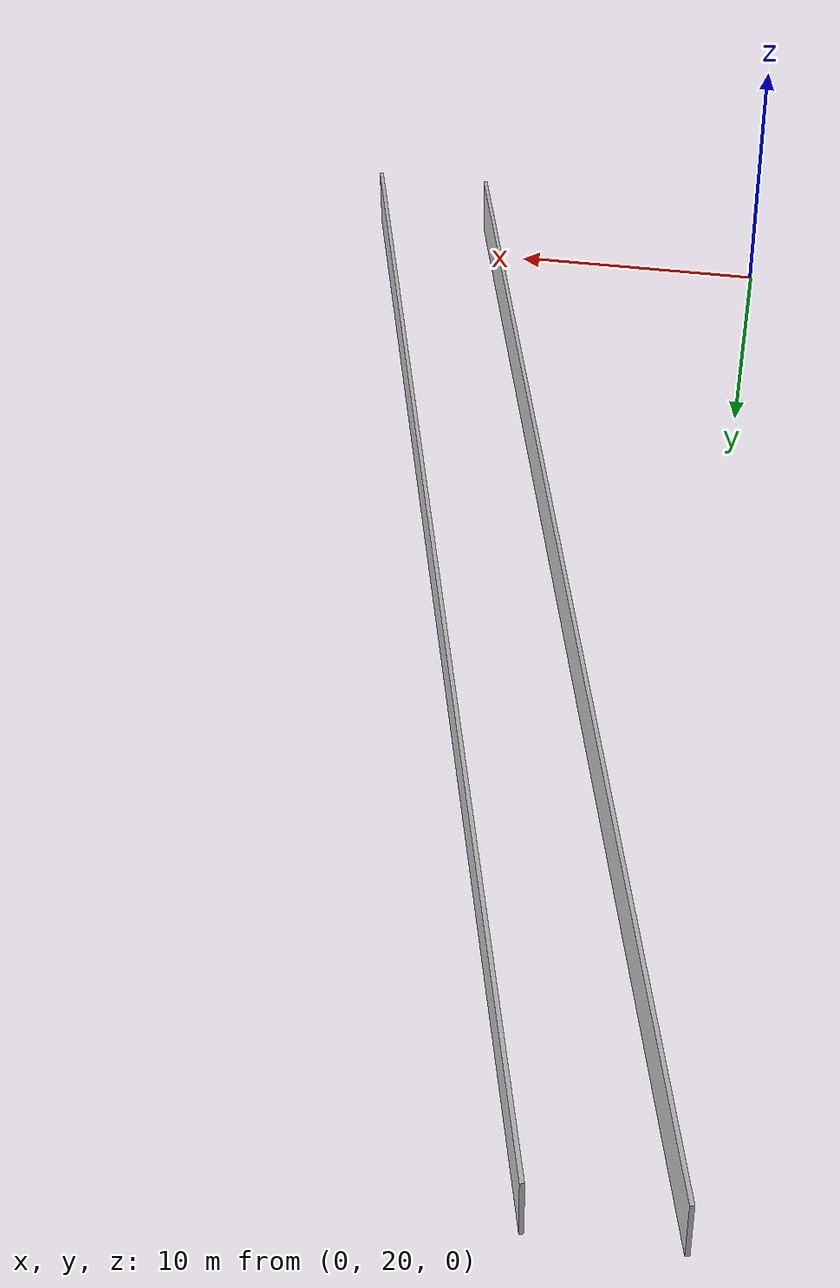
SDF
<?xml version="1.0" ?>
<sdf version="1.6">
  <model name="sps_0610">
    <pose frame="">0 0 0 0 -0 0</pose>
    <static>1</static>
    <self_collide>0</self_collide>
    <allow_auto_disable>0</allow_auto_disable>
    <link name="Wall99">
      <kinematic>0</kinematic>
      <gravity>1</gravity>
      <self_collide>0</self_collide>
      <collision name="collision">
        <geometry>
          <box>
            <size>51.7448 0.15 2.5</size>
          </box>
        </geometry>
        <pose frame="">0 0 0 0 -0 0</pose>
      </collision>
      <visual name="visual">
        <geometry>
          <box>
            <size>51.7448 0.15 2.5</size>
          </box>
        </geometry>
        <pose frame="">0 0 0 0 -0 0</pose>
        <cast_shadows>1</cast_shadows>
        <transparency>0.0</transparency>
      </visual>
      <pose frame="">10.0177 42.8931 1.25 0 -0 1.83122</pose>
    </link>
    <link name="Wall505">
      <kinematic>0</kinematic>
      <gravity>1</gravity>
      <self_collide>0</self_collide>
      <collision name="collision">
        <geometry>
          <box>
            <size>51.7448 0.15 2.5</size>
          </box>
        </geometry>
        <pose frame="">0 0 0 0 -0 0</pose>
      </collision>
      <visual name="visual">
        <geometry>
          <box>
            <size>51.7448 0.15 2.5</size>
          </box>
        </geometry>
        <pose frame="">0 0 0 0 -0 0</pose>
        <cast_shadows>1</cast_shadows>
        <transparency>0.0</transparency>
      </visual>
      <pose frame="">5.35985 42.8931 1.25 0 -0 1.83122</pose>
    </link>
  </model>
</sdf>
